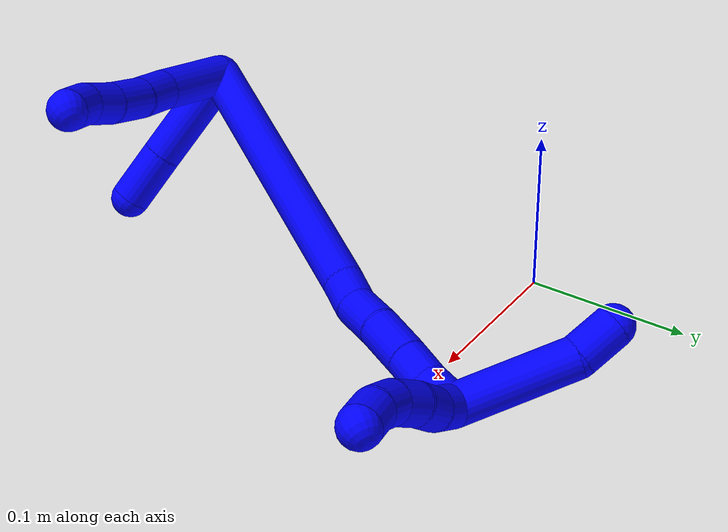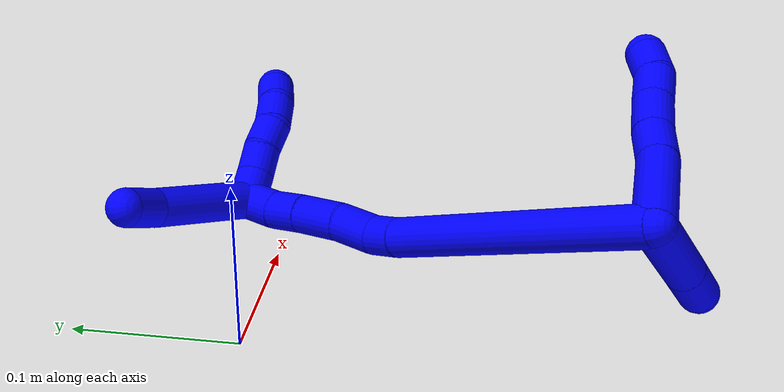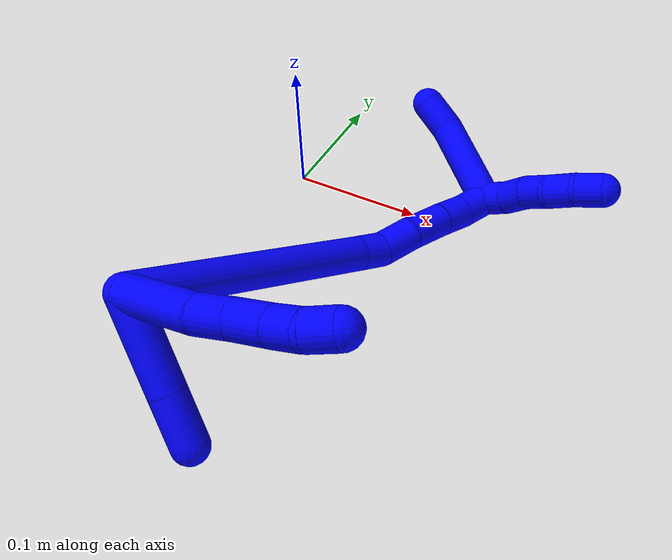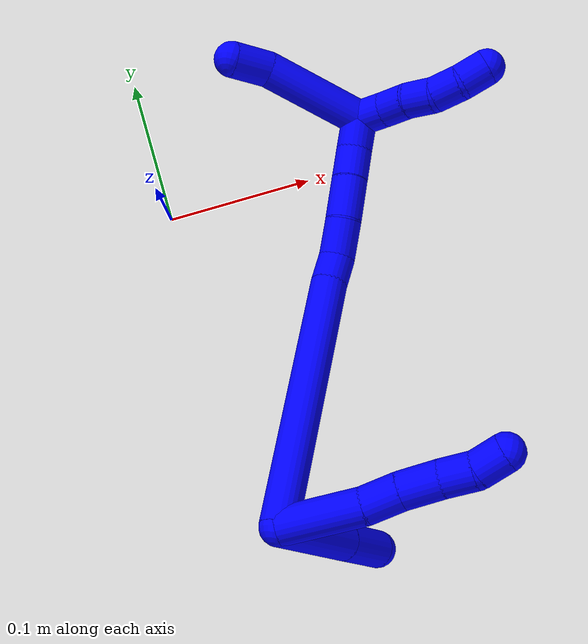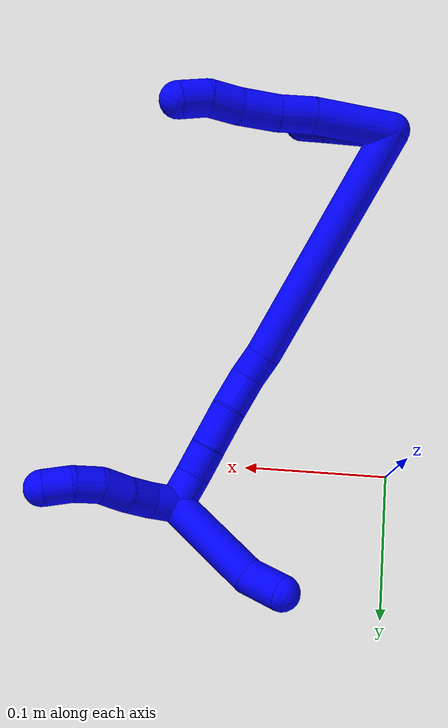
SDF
<sdf version="1.7">
 <world name="default">
  <model name="1">
   <static>0</static>
   <link name="1">
    <collision name="collision-cylinder-e_1_2_8">
     <pose>0.025704 0.003817 -0.009731 -2.76776 1.18454 -2.59357</pose>
     <geometry><cylinder><radius>0.0125</radius><length>0.055497</length></cylinder></geometry>
     <surface>
      <friction><ode><mu>1.16</mu><mu2>1.16</mu2><slip1>0</slip1><slip2>0</slip2></ode></friction>
      <contact><ode><kp>1e+06</kp><kd>1</kd><max_vel>0</max_vel><min_depth>0.001</min_depth></ode></contact>
     </surface>
    </collision>
    <visual name="visual-cylinder-e_1_2_8">
     <pose>0.025704 0.003817 -0.009731 -2.76776 1.18454 -2.59357</pose>
     <geometry><cylinder><radius>0.0125</radius><length>0.055497</length></cylinder></geometry>
     <material><ambient>0 0 1 1</ambient></material>
    </visual>
    <collision name="collision-cylinder-e_2_8_9">
     <pose>0.062046 0.010322 -0.025135 -2.69917 1.03773 -2.39126</pose>
     <geometry><cylinder><radius>0.0125</radius><length>0.024703</length></cylinder></geometry>
     <surface>
      <friction><ode><mu>1.16</mu><mu2>1.16</mu2><slip1>0</slip1><slip2>0</slip2></ode></friction>
      <contact><ode><kp>1e+06</kp><kd>1</kd><max_vel>0</max_vel><min_depth>0.001</min_depth></ode></contact>
     </surface>
    </collision>
    <visual name="visual-cylinder-e_2_8_9">
     <pose>0.062046 0.010322 -0.025135 -2.69917 1.03773 -2.39126</pose>
     <geometry><cylinder><radius>0.0125</radius><length>0.024703</length></cylinder></geometry>
     <material><ambient>0 0 1 1</ambient></material>
    </visual>
    <collision name="collision-cylinder-e_3_9_10">
     <pose>0.084919 0.016133 -0.035619 -2.56581 1.13241 -2.26964</pose>
     <geometry><cylinder><radius>0.0125</radius><length>0.027026</length></cylinder></geometry>
     <surface>
      <friction><ode><mu>1.16</mu><mu2>1.16</mu2><slip1>0</slip1><slip2>0</slip2></ode></friction>
      <contact><ode><kp>1e+06</kp><kd>1</kd><max_vel>0</max_vel><min_depth>0.001</min_depth></ode></contact>
     </surface>
    </collision>
    <visual name="visual-cylinder-e_3_9_10">
     <pose>0.084919 0.016133 -0.035619 -2.56581 1.13241 -2.26964</pose>
     <geometry><cylinder><radius>0.0125</radius><length>0.027026</length></cylinder></geometry>
     <material><ambient>0 0 1 1</ambient></material>
    </visual>
    <collision name="collision-cylinder-e_4_10_11">
     <pose>0.10721 0.022553 -0.043372 -2.29928 1.15679 -1.93887</pose>
     <geometry><cylinder><radius>0.0125</radius><length>0.021967</length></cylinder></geometry>
     <surface>
      <friction><ode><mu>1.16</mu><mu2>1.16</mu2><slip1>0</slip1><slip2>0</slip2></ode></friction>
      <contact><ode><kp>1e+06</kp><kd>1</kd><max_vel>0</max_vel><min_depth>0.001</min_depth></ode></contact>
     </surface>
    </collision>
    <visual name="visual-cylinder-e_4_10_11">
     <pose>0.10721 0.022553 -0.043372 -2.29928 1.15679 -1.93887</pose>
     <geometry><cylinder><radius>0.0125</radius><length>0.021967</length></cylinder></geometry>
     <material><ambient>0 0 1 1</ambient></material>
    </visual>
    <collision name="collision-cylinder-e_5_11_6">
     <pose>0.12527 0.029368 -0.051951 -2.58369 0.87796 -2.0461</pose>
     <geometry><cylinder><radius>0.0125</radius><length>0.020806</length></cylinder></geometry>
     <surface>
      <friction><ode><mu>1.16</mu><mu2>1.16</mu2><slip1>0</slip1><slip2>0</slip2></ode></friction>
      <contact><ode><kp>1e+06</kp><kd>1</kd><max_vel>0</max_vel><min_depth>0.001</min_depth></ode></contact>
     </surface>
    </collision>
    <visual name="visual-cylinder-e_5_11_6">
     <pose>0.12527 0.029368 -0.051951 -2.58369 0.87796 -2.0461</pose>
     <geometry><cylinder><radius>0.0125</radius><length>0.020806</length></cylinder></geometry>
     <material><ambient>0 0 1 1</ambient></material>
    </visual>
    <collision name="collision-cylinder-e_1_2_12">
     <pose>0.015697 -0.02689 -0.008458 1.87553 0.508083 0.680223</pose>
     <geometry><cylinder><radius>0.0125</radius><length>0.064528</length></cylinder></geometry>
     <surface>
      <friction><ode><mu>1.16</mu><mu2>1.16</mu2><slip1>0</slip1><slip2>0</slip2></ode></friction>
      <contact><ode><kp>1e+06</kp><kd>1</kd><max_vel>0</max_vel><min_depth>0.001</min_depth></ode></contact>
     </surface>
    </collision>
    <visual name="visual-cylinder-e_1_2_12">
     <pose>0.015697 -0.02689 -0.008458 1.87553 0.508083 0.680223</pose>
     <geometry><cylinder><radius>0.0125</radius><length>0.064528</length></cylinder></geometry>
     <material><ambient>0 0 1 1</ambient></material>
    </visual>
    <collision name="collision-cylinder-e_2_12_5">
     <pose>0.039922 -0.068585 -0.021671 1.88157 0.50165 0.675853</pose>
     <geometry><cylinder><radius>0.0125</radius><length>0.035472</length></cylinder></geometry>
     <surface>
      <friction><ode><mu>1.16</mu><mu2>1.16</mu2><slip1>0</slip1><slip2>0</slip2></ode></friction>
      <contact><ode><kp>1e+06</kp><kd>1</kd><max_vel>0</max_vel><min_depth>0.001</min_depth></ode></contact>
     </surface>
    </collision>
    <visual name="visual-cylinder-e_2_12_5">
     <pose>0.039922 -0.068585 -0.021671 1.88157 0.50165 0.675853</pose>
     <geometry><cylinder><radius>0.0125</radius><length>0.035472</length></cylinder></geometry>
     <material><ambient>0 0 1 1</ambient></material>
    </visual>
    <collision name="collision-cylinder-e_1_2_13">
     <pose>-0.003787 0.000859 -0.088516 -3.13189 -0.04276 2.69542</pose>
     <geometry><cylinder><radius>0.0125</radius><length>0.177203</length></cylinder></geometry>
     <surface>
      <friction><ode><mu>1.16</mu><mu2>1.16</mu2><slip1>0</slip1><slip2>0</slip2></ode></friction>
      <contact><ode><kp>1e+06</kp><kd>1</kd><max_vel>0</max_vel><min_depth>0.001</min_depth></ode></contact>
     </surface>
    </collision>
    <visual name="visual-cylinder-e_1_2_13">
     <pose>-0.003787 0.000859 -0.088516 -3.13189 -0.04276 2.69542</pose>
     <geometry><cylinder><radius>0.0125</radius><length>0.177203</length></cylinder></geometry>
     <material><ambient>0 0 1 1</ambient></material>
    </visual>
    <collision name="collision-cylinder-e_2_13_14">
     <pose>-0.006983 0.002458 -0.187059 -3.06789 0.058818 -1.34695</pose>
     <geometry><cylinder><radius>0.0125</radius><length>0.020141</length></cylinder></geometry>
     <surface>
      <friction><ode><mu>1.16</mu><mu2>1.16</mu2><slip1>0</slip1><slip2>0</slip2></ode></friction>
      <contact><ode><kp>1e+06</kp><kd>1</kd><max_vel>0</max_vel><min_depth>0.001</min_depth></ode></contact>
     </surface>
    </collision>
    <visual name="visual-cylinder-e_2_13_14">
     <pose>-0.006983 0.002458 -0.187059 -3.06789 0.058818 -1.34695</pose>
     <geometry><cylinder><radius>0.0125</radius><length>0.020141</length></cylinder></geometry>
     <material><ambient>0 0 1 1</ambient></material>
    </visual>
    <collision name="collision-cylinder-e_3_14_15">
     <pose>-0.0061 0.00836 -0.209367 -2.74376 0.021827 -0.108176</pose>
     <geometry><cylinder><radius>0.0125</radius><length>0.026652</length></cylinder></geometry>
     <surface>
      <friction><ode><mu>1.16</mu><mu2>1.16</mu2><slip1>0</slip1><slip2>0</slip2></ode></friction>
      <contact><ode><kp>1e+06</kp><kd>1</kd><max_vel>0</max_vel><min_depth>0.001</min_depth></ode></contact>
     </surface>
    </collision>
    <visual name="visual-cylinder-e_3_14_15">
     <pose>-0.0061 0.00836 -0.209367 -2.74376 0.021827 -0.108176</pose>
     <geometry><cylinder><radius>0.0125</radius><length>0.026652</length></cylinder></geometry>
     <material><ambient>0 0 1 1</ambient></material>
    </visual>
    <collision name="collision-cylinder-e_4_15_16">
     <pose>-0.006243 0.017549 -0.236107 -2.86992 -0.028905 0.21072</pose>
     <geometry><cylinder><radius>0.0125</radius><length>0.030029</length></cylinder></geometry>
     <surface>
      <friction><ode><mu>1.16</mu><mu2>1.16</mu2><slip1>0</slip1><slip2>0</slip2></ode></friction>
      <contact><ode><kp>1e+06</kp><kd>1</kd><max_vel>0</max_vel><min_depth>0.001</min_depth></ode></contact>
     </surface>
    </collision>
    <visual name="visual-cylinder-e_4_15_16">
     <pose>-0.006243 0.017549 -0.236107 -2.86992 -0.028905 0.21072</pose>
     <geometry><cylinder><radius>0.0125</radius><length>0.030029</length></cylinder></geometry>
     <material><ambient>0 0 1 1</ambient></material>
    </visual>
    <collision name="collision-cylinder-e_5_16_17">
     <pose>-0.007142 0.023949 -0.261535 -2.92854 -0.041346 0.382008</pose>
     <geometry><cylinder><radius>0.0125</radius><length>0.022469</length></cylinder></geometry>
     <surface>
      <friction><ode><mu>1.16</mu><mu2>1.16</mu2><slip1>0</slip1><slip2>0</slip2></ode></friction>
      <contact><ode><kp>1e+06</kp><kd>1</kd><max_vel>0</max_vel><min_depth>0.001</min_depth></ode></contact>
     </surface>
    </collision>
    <visual name="visual-cylinder-e_5_16_17">
     <pose>-0.007142 0.023949 -0.261535 -2.92854 -0.041346 0.382008</pose>
     <geometry><cylinder><radius>0.0125</radius><length>0.022469</length></cylinder></geometry>
     <material><ambient>0 0 1 1</ambient></material>
    </visual>
    <collision name="collision-cylinder-e_6_17_1">
     <pose>-0.007467 0.030801 -0.283372 -2.75063 0.011804 -0.059597</pose>
     <geometry><cylinder><radius>0.0125</radius><length>0.023506</length></cylinder></geometry>
     <surface>
      <friction><ode><mu>1.16</mu><mu2>1.16</mu2><slip1>0</slip1><slip2>0</slip2></ode></friction>
      <contact><ode><kp>1e+06</kp><kd>1</kd><max_vel>0</max_vel><min_depth>0.001</min_depth></ode></contact>
     </surface>
    </collision>
    <visual name="visual-cylinder-e_6_17_1">
     <pose>-0.007467 0.030801 -0.283372 -2.75063 0.011804 -0.059597</pose>
     <geometry><cylinder><radius>0.0125</radius><length>0.023506</length></cylinder></geometry>
     <material><ambient>0 0 1 1</ambient></material>
    </visual>
    <collision name="collision-cylinder-e_1_1_18">
     <pose>-0.038298 0.054276 -0.297051 -1.71783 -1.01575 1.1458</pose>
     <geometry><cylinder><radius>0.0125</radius><length>0.072881</length></cylinder></geometry>
     <surface>
      <friction><ode><mu>1.16</mu><mu2>1.16</mu2><slip1>0</slip1><slip2>0</slip2></ode></friction>
      <contact><ode><kp>1e+06</kp><kd>1</kd><max_vel>0</max_vel><min_depth>0.001</min_depth></ode></contact>
     </surface>
    </collision>
    <visual name="visual-cylinder-e_1_1_18">
     <pose>-0.038298 0.054276 -0.297051 -1.71783 -1.01575 1.1458</pose>
     <geometry><cylinder><radius>0.0125</radius><length>0.072881</length></cylinder></geometry>
     <material><ambient>0 0 1 1</ambient></material>
    </visual>
    <collision name="collision-cylinder-e_2_18_4">
     <pose>-0.079965 0.080934 -0.296584 -1.16629 -0.908928 0.623572</pose>
     <geometry><cylinder><radius>0.0125</radius><length>0.027119</length></cylinder></geometry>
     <surface>
      <friction><ode><mu>1.16</mu><mu2>1.16</mu2><slip1>0</slip1><slip2>0</slip2></ode></friction>
      <contact><ode><kp>1e+06</kp><kd>1</kd><max_vel>0</max_vel><min_depth>0.001</min_depth></ode></contact>
     </surface>
    </collision>
    <visual name="visual-cylinder-e_2_18_4">
     <pose>-0.079965 0.080934 -0.296584 -1.16629 -0.908928 0.623572</pose>
     <geometry><cylinder><radius>0.0125</radius><length>0.027119</length></cylinder></geometry>
     <material><ambient>0 0 1 1</ambient></material>
    </visual>
    <collision name="collision-cylinder-e_1_1_19">
     <pose>0.001761 0.038866 -0.296365 -2.10614 1.14068 -1.68941</pose>
     <geometry><cylinder><radius>0.0125</radius><length>0.02</length></cylinder></geometry>
     <surface>
      <friction><ode><mu>1.16</mu><mu2>1.16</mu2><slip1>0</slip1><slip2>0</slip2></ode></friction>
      <contact><ode><kp>1e+06</kp><kd>1</kd><max_vel>0</max_vel><min_depth>0.001</min_depth></ode></contact>
     </surface>
    </collision>
    <visual name="visual-cylinder-e_1_1_19">
     <pose>0.001761 0.038866 -0.296365 -2.10614 1.14068 -1.68941</pose>
     <geometry><cylinder><radius>0.0125</radius><length>0.02</length></cylinder></geometry>
     <material><ambient>0 0 1 1</ambient></material>
    </visual>
    <collision name="collision-cylinder-e_2_19_20">
     <pose>0.019394 0.047608 -0.299138 -1.69545 1.02445 -1.13456</pose>
     <geometry><cylinder><radius>0.0125</radius><length>0.02</length></cylinder></geometry>
     <surface>
      <friction><ode><mu>1.16</mu><mu2>1.16</mu2><slip1>0</slip1><slip2>0</slip2></ode></friction>
      <contact><ode><kp>1e+06</kp><kd>1</kd><max_vel>0</max_vel><min_depth>0.001</min_depth></ode></contact>
     </surface>
    </collision>
    <visual name="visual-cylinder-e_2_19_20">
     <pose>0.019394 0.047608 -0.299138 -1.69545 1.02445 -1.13456</pose>
     <geometry><cylinder><radius>0.0125</radius><length>0.02</length></cylinder></geometry>
     <material><ambient>0 0 1 1</ambient></material>
    </visual>
    <collision name="collision-cylinder-e_3_20_21">
     <pose>0.037273 0.05631 -0.300327 -1.72272 1.20381 -1.34962</pose>
     <geometry><cylinder><radius>0.0125</radius><length>0.02</length></cylinder></geometry>
     <surface>
      <friction><ode><mu>1.16</mu><mu2>1.16</mu2><slip1>0</slip1><slip2>0</slip2></ode></friction>
      <contact><ode><kp>1e+06</kp><kd>1</kd><max_vel>0</max_vel><min_depth>0.001</min_depth></ode></contact>
     </surface>
    </collision>
    <visual name="visual-cylinder-e_3_20_21">
     <pose>0.037273 0.05631 -0.300327 -1.72272 1.20381 -1.34962</pose>
     <geometry><cylinder><radius>0.0125</radius><length>0.02</length></cylinder></geometry>
     <material><ambient>0 0 1 1</ambient></material>
    </visual>
    <collision name="collision-cylinder-e_4_21_22">
     <pose>0.055297 0.06343 -0.304292 -2.33474 1.05322 -1.87498</pose>
     <geometry><cylinder><radius>0.0125</radius><length>0.02</length></cylinder></geometry>
     <surface>
      <friction><ode><mu>1.16</mu><mu2>1.16</mu2><slip1>0</slip1><slip2>0</slip2></ode></friction>
      <contact><ode><kp>1e+06</kp><kd>1</kd><max_vel>0</max_vel><min_depth>0.001</min_depth></ode></contact>
     </surface>
    </collision>
    <visual name="visual-cylinder-e_4_21_22">
     <pose>0.055297 0.06343 -0.304292 -2.33474 1.05322 -1.87498</pose>
     <geometry><cylinder><radius>0.0125</radius><length>0.02</length></cylinder></geometry>
     <material><ambient>0 0 1 1</ambient></material>
    </visual>
    <collision name="collision-cylinder-e_5_22_3">
     <pose>0.071931 0.069303 -0.313336 -2.7532 0.918071 -2.38416</pose>
     <geometry><cylinder><radius>0.0125</radius><length>0.02</length></cylinder></geometry>
     <surface>
      <friction><ode><mu>1.16</mu><mu2>1.16</mu2><slip1>0</slip1><slip2>0</slip2></ode></friction>
      <contact><ode><kp>1e+06</kp><kd>1</kd><max_vel>0</max_vel><min_depth>0.001</min_depth></ode></contact>
     </surface>
    </collision>
    <visual name="visual-cylinder-e_5_22_3">
     <pose>0.071931 0.069303 -0.313336 -2.7532 0.918071 -2.38416</pose>
     <geometry><cylinder><radius>0.0125</radius><length>0.02</length></cylinder></geometry>
     <material><ambient>0 0 1 1</ambient></material>
    </visual>
    <collision name="collision-sphere-3">
     <pose>0.079876 0.071603 -0.318958 0 -0 0</pose>
     <geometry><sphere><radius>0.0125</radius></sphere></geometry>
     <surface>
      <friction><ode><mu>1.16</mu><mu2>1.16</mu2><slip1>0</slip1><slip2>0</slip2></ode></friction>
      <contact><ode><kp>1e+06</kp><kd>1</kd><max_vel>0</max_vel><min_depth>0.001</min_depth></ode></contact>
     </surface>
    </collision>
    <visual name="visual-sphere-3">
     <pose>0.079876 0.071603 -0.318958 0 -0 0</pose>
     <geometry><sphere><radius>0.0125</radius></sphere></geometry>
     <material><ambient>0 0 1 1</ambient></material>
    </visual>
    <collision name="collision-sphere-22">
     <pose>0.063987 0.067003 -0.307715 0 -0 0</pose>
     <geometry><sphere><radius>0.0125</radius></sphere></geometry>
     <surface>
      <friction><ode><mu>1.16</mu><mu2>1.16</mu2><slip1>0</slip1><slip2>0</slip2></ode></friction>
      <contact><ode><kp>1e+06</kp><kd>1</kd><max_vel>0</max_vel><min_depth>0.001</min_depth></ode></contact>
     </surface>
    </collision>
    <visual name="visual-sphere-22">
     <pose>0.063987 0.067003 -0.307715 0 -0 0</pose>
     <geometry><sphere><radius>0.0125</radius></sphere></geometry>
     <material><ambient>0 0 1 1</ambient></material>
    </visual>
    <collision name="collision-sphere-21">
     <pose>0.046607 0.059857 -0.30087 0 -0 0</pose>
     <geometry><sphere><radius>0.0125</radius></sphere></geometry>
     <surface>
      <friction><ode><mu>1.16</mu><mu2>1.16</mu2><slip1>0</slip1><slip2>0</slip2></ode></friction>
      <contact><ode><kp>1e+06</kp><kd>1</kd><max_vel>0</max_vel><min_depth>0.001</min_depth></ode></contact>
     </surface>
    </collision>
    <visual name="visual-sphere-21">
     <pose>0.046607 0.059857 -0.30087 0 -0 0</pose>
     <geometry><sphere><radius>0.0125</radius></sphere></geometry>
     <material><ambient>0 0 1 1</ambient></material>
    </visual>
    <collision name="collision-sphere-20">
     <pose>0.027938 0.052763 -0.299784 0 -0 0</pose>
     <geometry><sphere><radius>0.0125</radius></sphere></geometry>
     <surface>
      <friction><ode><mu>1.16</mu><mu2>1.16</mu2><slip1>0</slip1><slip2>0</slip2></ode></friction>
      <contact><ode><kp>1e+06</kp><kd>1</kd><max_vel>0</max_vel><min_depth>0.001</min_depth></ode></contact>
     </surface>
    </collision>
    <visual name="visual-sphere-20">
     <pose>0.027938 0.052763 -0.299784 0 -0 0</pose>
     <geometry><sphere><radius>0.0125</radius></sphere></geometry>
     <material><ambient>0 0 1 1</ambient></material>
    </visual>
    <collision name="collision-sphere-19">
     <pose>0.01085 0.042453 -0.298492 0 -0 0</pose>
     <geometry><sphere><radius>0.0125</radius></sphere></geometry>
     <surface>
      <friction><ode><mu>1.16</mu><mu2>1.16</mu2><slip1>0</slip1><slip2>0</slip2></ode></friction>
      <contact><ode><kp>1e+06</kp><kd>1</kd><max_vel>0</max_vel><min_depth>0.001</min_depth></ode></contact>
     </surface>
    </collision>
    <visual name="visual-sphere-19">
     <pose>0.01085 0.042453 -0.298492 0 -0 0</pose>
     <geometry><sphere><radius>0.0125</radius></sphere></geometry>
     <material><ambient>0 0 1 1</ambient></material>
    </visual>
    <collision name="collision-sphere-6">
     <pose>0.133275 0.032886 -0.057588 0 -0 0</pose>
     <geometry><sphere><radius>0.0125</radius></sphere></geometry>
     <surface>
      <friction><ode><mu>1.16</mu><mu2>1.16</mu2><slip1>0</slip1><slip2>0</slip2></ode></friction>
      <contact><ode><kp>1e+06</kp><kd>1</kd><max_vel>0</max_vel><min_depth>0.001</min_depth></ode></contact>
     </surface>
    </collision>
    <visual name="visual-sphere-6">
     <pose>0.133275 0.032886 -0.057588 0 -0 0</pose>
     <geometry><sphere><radius>0.0125</radius></sphere></geometry>
     <material><ambient>0 0 1 1</ambient></material>
    </visual>
    <collision name="collision-sphere-11">
     <pose>0.117266 0.02585 -0.046313 0 -0 0</pose>
     <geometry><sphere><radius>0.0125</radius></sphere></geometry>
     <surface>
      <friction><ode><mu>1.16</mu><mu2>1.16</mu2><slip1>0</slip1><slip2>0</slip2></ode></friction>
      <contact><ode><kp>1e+06</kp><kd>1</kd><max_vel>0</max_vel><min_depth>0.001</min_depth></ode></contact>
     </surface>
    </collision>
    <visual name="visual-sphere-11">
     <pose>0.117266 0.02585 -0.046313 0 -0 0</pose>
     <geometry><sphere><radius>0.0125</radius></sphere></geometry>
     <material><ambient>0 0 1 1</ambient></material>
    </visual>
    <collision name="collision-sphere-10">
     <pose>0.097154 0.019256 -0.04043 0 -0 0</pose>
     <geometry><sphere><radius>0.0125</radius></sphere></geometry>
     <surface>
      <friction><ode><mu>1.16</mu><mu2>1.16</mu2><slip1>0</slip1><slip2>0</slip2></ode></friction>
      <contact><ode><kp>1e+06</kp><kd>1</kd><max_vel>0</max_vel><min_depth>0.001</min_depth></ode></contact>
     </surface>
    </collision>
    <visual name="visual-sphere-10">
     <pose>0.097154 0.019256 -0.04043 0 -0 0</pose>
     <geometry><sphere><radius>0.0125</radius></sphere></geometry>
     <material><ambient>0 0 1 1</ambient></material>
    </visual>
    <collision name="collision-sphere-9">
     <pose>0.072684 0.01301 -0.030808 0 -0 0</pose>
     <geometry><sphere><radius>0.0125</radius></sphere></geometry>
     <surface>
      <friction><ode><mu>1.16</mu><mu2>1.16</mu2><slip1>0</slip1><slip2>0</slip2></ode></friction>
      <contact><ode><kp>1e+06</kp><kd>1</kd><max_vel>0</max_vel><min_depth>0.001</min_depth></ode></contact>
     </surface>
    </collision>
    <visual name="visual-sphere-9">
     <pose>0.072684 0.01301 -0.030808 0 -0 0</pose>
     <geometry><sphere><radius>0.0125</radius></sphere></geometry>
     <material><ambient>0 0 1 1</ambient></material>
    </visual>
    <collision name="collision-sphere-2">
     <geometry><sphere><radius>0.0125</radius></sphere></geometry>
     <surface>
      <friction><ode><mu>1.16</mu><mu2>1.16</mu2><slip1>0</slip1><slip2>0</slip2></ode></friction>
      <contact><ode><kp>1e+06</kp><kd>1</kd><max_vel>0</max_vel><min_depth>0.001</min_depth></ode></contact>
     </surface>
    </collision>
    <visual name="visual-sphere-2">
     <geometry><sphere><radius>0.0125</radius></sphere></geometry>
     <material><ambient>0 0 1 1</ambient></material>
    </visual>
    <collision name="collision-sphere-8">
     <pose>0.051408 0.007635 -0.019463 0 -0 0</pose>
     <geometry><sphere><radius>0.0125</radius></sphere></geometry>
     <surface>
      <friction><ode><mu>1.16</mu><mu2>1.16</mu2><slip1>0</slip1><slip2>0</slip2></ode></friction>
      <contact><ode><kp>1e+06</kp><kd>1</kd><max_vel>0</max_vel><min_depth>0.001</min_depth></ode></contact>
     </surface>
    </collision>
    <visual name="visual-sphere-8">
     <pose>0.051408 0.007635 -0.019463 0 -0 0</pose>
     <geometry><sphere><radius>0.0125</radius></sphere></geometry>
     <material><ambient>0 0 1 1</ambient></material>
    </visual>
    <collision name="collision-sphere-12">
     <pose>0.031393 -0.05378 -0.016916 0 -0 0</pose>
     <geometry><sphere><radius>0.0125</radius></sphere></geometry>
     <surface>
      <friction><ode><mu>1.16</mu><mu2>1.16</mu2><slip1>0</slip1><slip2>0</slip2></ode></friction>
      <contact><ode><kp>1e+06</kp><kd>1</kd><max_vel>0</max_vel><min_depth>0.001</min_depth></ode></contact>
     </surface>
    </collision>
    <visual name="visual-sphere-12">
     <pose>0.031393 -0.05378 -0.016916 0 -0 0</pose>
     <geometry><sphere><radius>0.0125</radius></sphere></geometry>
     <material><ambient>0 0 1 1</ambient></material>
    </visual>
    <collision name="collision-sphere-5">
     <pose>0.048451 -0.083391 -0.026426 0 -0 0</pose>
     <geometry><sphere><radius>0.0125</radius></sphere></geometry>
     <surface>
      <friction><ode><mu>1.16</mu><mu2>1.16</mu2><slip1>0</slip1><slip2>0</slip2></ode></friction>
      <contact><ode><kp>1e+06</kp><kd>1</kd><max_vel>0</max_vel><min_depth>0.001</min_depth></ode></contact>
     </surface>
    </collision>
    <visual name="visual-sphere-5">
     <pose>0.048451 -0.083391 -0.026426 0 -0 0</pose>
     <geometry><sphere><radius>0.0125</radius></sphere></geometry>
     <material><ambient>0 0 1 1</ambient></material>
    </visual>
    <collision name="collision-sphere-13">
     <pose>-0.007575 0.001718 -0.177033 0 -0 0</pose>
     <geometry><sphere><radius>0.0125</radius></sphere></geometry>
     <surface>
      <friction><ode><mu>1.16</mu><mu2>1.16</mu2><slip1>0</slip1><slip2>0</slip2></ode></friction>
      <contact><ode><kp>1e+06</kp><kd>1</kd><max_vel>0</max_vel><min_depth>0.001</min_depth></ode></contact>
     </surface>
    </collision>
    <visual name="visual-sphere-13">
     <pose>-0.007575 0.001718 -0.177033 0 -0 0</pose>
     <geometry><sphere><radius>0.0125</radius></sphere></geometry>
     <material><ambient>0 0 1 1</ambient></material>
    </visual>
    <collision name="collision-sphere-14">
     <pose>-0.006391 0.003198 -0.197084 0 -0 0</pose>
     <geometry><sphere><radius>0.0125</radius></sphere></geometry>
     <surface>
      <friction><ode><mu>1.16</mu><mu2>1.16</mu2><slip1>0</slip1><slip2>0</slip2></ode></friction>
      <contact><ode><kp>1e+06</kp><kd>1</kd><max_vel>0</max_vel><min_depth>0.001</min_depth></ode></contact>
     </surface>
    </collision>
    <visual name="visual-sphere-14">
     <pose>-0.006391 0.003198 -0.197084 0 -0 0</pose>
     <geometry><sphere><radius>0.0125</radius></sphere></geometry>
     <material><ambient>0 0 1 1</ambient></material>
    </visual>
    <collision name="collision-sphere-15">
     <pose>-0.005809 0.013521 -0.221649 0 -0 0</pose>
     <geometry><sphere><radius>0.0125</radius></sphere></geometry>
     <surface>
      <friction><ode><mu>1.16</mu><mu2>1.16</mu2><slip1>0</slip1><slip2>0</slip2></ode></friction>
      <contact><ode><kp>1e+06</kp><kd>1</kd><max_vel>0</max_vel><min_depth>0.001</min_depth></ode></contact>
     </surface>
    </collision>
    <visual name="visual-sphere-15">
     <pose>-0.005809 0.013521 -0.221649 0 -0 0</pose>
     <geometry><sphere><radius>0.0125</radius></sphere></geometry>
     <material><ambient>0 0 1 1</ambient></material>
    </visual>
    <collision name="collision-sphere-16">
     <pose>-0.006677 0.021576 -0.250564 0 -0 0</pose>
     <geometry><sphere><radius>0.0125</radius></sphere></geometry>
     <surface>
      <friction><ode><mu>1.16</mu><mu2>1.16</mu2><slip1>0</slip1><slip2>0</slip2></ode></friction>
      <contact><ode><kp>1e+06</kp><kd>1</kd><max_vel>0</max_vel><min_depth>0.001</min_depth></ode></contact>
     </surface>
    </collision>
    <visual name="visual-sphere-16">
     <pose>-0.006677 0.021576 -0.250564 0 -0 0</pose>
     <geometry><sphere><radius>0.0125</radius></sphere></geometry>
     <material><ambient>0 0 1 1</ambient></material>
    </visual>
    <collision name="collision-sphere-17">
     <pose>-0.007606 0.026323 -0.272506 0 -0 0</pose>
     <geometry><sphere><radius>0.0125</radius></sphere></geometry>
     <surface>
      <friction><ode><mu>1.16</mu><mu2>1.16</mu2><slip1>0</slip1><slip2>0</slip2></ode></friction>
      <contact><ode><kp>1e+06</kp><kd>1</kd><max_vel>0</max_vel><min_depth>0.001</min_depth></ode></contact>
     </surface>
    </collision>
    <visual name="visual-sphere-17">
     <pose>-0.007606 0.026323 -0.272506 0 -0 0</pose>
     <geometry><sphere><radius>0.0125</radius></sphere></geometry>
     <material><ambient>0 0 1 1</ambient></material>
    </visual>
    <collision name="collision-sphere-1">
     <pose>-0.007328 0.03528 -0.294237 0 -0 0</pose>
     <geometry><sphere><radius>0.0125</radius></sphere></geometry>
     <surface>
      <friction><ode><mu>1.16</mu><mu2>1.16</mu2><slip1>0</slip1><slip2>0</slip2></ode></friction>
      <contact><ode><kp>1e+06</kp><kd>1</kd><max_vel>0</max_vel><min_depth>0.001</min_depth></ode></contact>
     </surface>
    </collision>
    <visual name="visual-sphere-1">
     <pose>-0.007328 0.03528 -0.294237 0 -0 0</pose>
     <geometry><sphere><radius>0.0125</radius></sphere></geometry>
     <material><ambient>0 0 1 1</ambient></material>
    </visual>
    <collision name="collision-sphere-18">
     <pose>-0.069268 0.073273 -0.299864 0 -0 0</pose>
     <geometry><sphere><radius>0.0125</radius></sphere></geometry>
     <surface>
      <friction><ode><mu>1.16</mu><mu2>1.16</mu2><slip1>0</slip1><slip2>0</slip2></ode></friction>
      <contact><ode><kp>1e+06</kp><kd>1</kd><max_vel>0</max_vel><min_depth>0.001</min_depth></ode></contact>
     </surface>
    </collision>
    <visual name="visual-sphere-18">
     <pose>-0.069268 0.073273 -0.299864 0 -0 0</pose>
     <geometry><sphere><radius>0.0125</radius></sphere></geometry>
     <material><ambient>0 0 1 1</ambient></material>
    </visual>
    <collision name="collision-sphere-4">
     <pose>-0.090661 0.088595 -0.293305 0 -0 0</pose>
     <geometry><sphere><radius>0.0125</radius></sphere></geometry>
     <surface>
      <friction><ode><mu>1.16</mu><mu2>1.16</mu2><slip1>0</slip1><slip2>0</slip2></ode></friction>
      <contact><ode><kp>1e+06</kp><kd>1</kd><max_vel>0</max_vel><min_depth>0.001</min_depth></ode></contact>
     </surface>
    </collision>
    <visual name="visual-sphere-4">
     <pose>-0.090661 0.088595 -0.293305 0 -0 0</pose>
     <geometry><sphere><radius>0.0125</radius></sphere></geometry>
     <material><ambient>0 0 1 1</ambient></material>
    </visual>
    <inertial>
     <pose>0.0132 0.015621 -0.146792 0 -0 0</pose>
     <mass>0.75</mass>
     <inertia>
      <ixx>-0.000152</ixx>
      <ixy>0</ixy>
      <ixz>0</ixz>
      <iyy>0.000706</iyy>
      <iyz>0</iyz>
      <izz>-3.2e-05</izz>
     </inertia>
    </inertial>
   </link>
   <pose>0.016148 -0.22468 0.087397 1.19291 -0.220368 -0.439204</pose>
  </model>
 </world>
</sdf>
